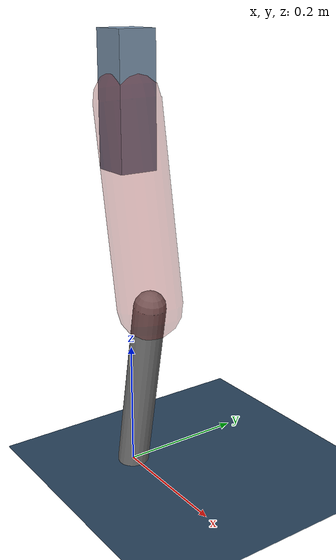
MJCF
<mujoco model="Hopper2D">
	<compiler inertiafromgeom="true" angle="radian" />
	<option timestep="0.001" integrator="implicit" cone="elliptic" solver="Newton" tolerance="1e-10" />

	<default>
		<geom contype="1" conaffinity="1" condim="3" friction="2 0.005 0.0001" solref="0.005 1" />
		<joint limited="true" damping="0.1" />
	</default>

	<asset>
		<texture name="skybox" type="skybox" builtin="gradient" rgb1=".4 .6 .8" rgb2="0 0 0" width="800" height="800" />
		<texture name="grid" type="2d" builtin="checker" rgb1=".1 .2 .3" rgb2=".2 .3 .4" width="300" height="300" mark="edge" markrgb=".2 .3 .4" />
		<material name="ground" texture="grid" texrepeat="1 1" texuniform="true" reflectance="0.1" />
		<material name="leg" rgba="0.5 0.6 0.7 1" />
	</asset>

	<worldbody>

		<geom name="floor" type="plane" size="5 5 0.25" material="ground" />

		<light directional="false" diffuse="0.8 0.8 0.8" specular="0.3 0.3 0.3" pos="0 0 2" dir="0 0 -1" />
		<light mode="targetbodycom" target="base" directional="false" diffuse="0.8 0.8 0.8" specular="0.3 0.3 0.3" pos="0 0 2" dir="0 0 -1" />

		<camera name="fixed" pos="0 -2 1" xyaxes="1 0 0 0 0 1" />
		<camera name="tracking" mode="trackcom" pos="0 -3 1" />

		<body name="root" pos="0 0 0.5847516871951188">
			<joint name="slide_x" type="slide" axis="1 0 0" range="-100 100" />
			<joint name="slide_z" type="slide" axis="0 0 1" range="0 10" />

			<body name="base" pos="0 0 0">
				<geom name="torso" type="box" size="0.03 0.03 0.1" mass="3.2439999999999998" material="leg" />

				<body name="link1" pos="0 0 0" euler="0 1.391380382852488 0">
					<joint type="hinge" axis="0 -1 0" pos="0 0 0" name="hinge1" limited="true" range="-3.14 3.14" stiffness="0" damping="0.1" />
					<geom name="thigh" type="capsule" fromto="0 0 0 0.3042092502053879 0 0" size="0.05" rgba="0.5 0 0 0.3" mass="1.0001649755545474" />

					<body name="link2" pos="0.3042092502053879 0 0" euler="0 0.36736987889209316 0">
						<joint type="hinge" axis="0 -1 0" pos="0 0 0" name="hinge2" limited="true" range="-3.14 3.14" stiffness="0" damping="0.1" />
						<geom name="shank" type="capsule" fromto="0 0 0 0.2905424369897309 0 0" size="0.025" mass="0.4757339495917848" />

					</body>
				</body>
			</body>
		</body>
	</worldbody>

	<actuator>
		<motor name="torque1" joint="hinge1" ctrlrange="-184.2529932484183 184.2529932484183" ctrllimited="true" gear="1" />
		<motor name="torque2" joint="hinge2" ctrlrange="-96.78620872995086 96.78620872995086" ctrllimited="true" gear="1" />
	</actuator>
</mujoco>
